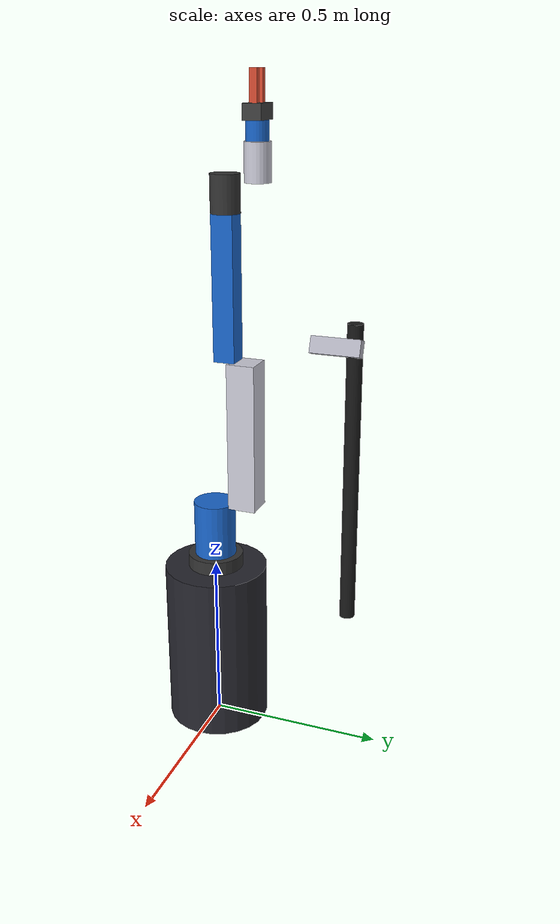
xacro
<?xml version="1.0"?>
<robot name="manipulation_robot" xmlns:xacro="http://www.ros.org/wiki/xacro">

  <!-- Include sub-macros -->
  <xacro:include filename="$(find manipulation_grasping)/urdf/arm_6dof.urdf.xacro"/>
  <xacro:include filename="$(find manipulation_grasping)/urdf/gripper.urdf.xacro"/>
  <xacro:include filename="$(find manipulation_grasping)/urdf/camera_mount.urdf.xacro"/>

  <!-- World Frame -->
  <link name="world"/>

  <!-- Heavy Mounting Pedestal -->
  <link name="base_link">
    <visual>
      <geometry>
        <cylinder radius="0.15" length="0.5"/>
      </geometry>
      <origin xyz="0 0 0.25" rpy="0 0 0"/>
      <material name="pedestal_color">
        <color rgba="0.15 0.15 0.18 1.0"/>
      </material>
    </visual>
    <collision>
      <geometry>
        <cylinder radius="0.15" length="0.5"/>
      </geometry>
      <origin xyz="0 0 0.25" rpy="0 0 0"/>
    </collision>
    <inertial>
      <mass value="50.0"/>
      <origin xyz="0 0 0.25" rpy="0 0 0"/>
      <inertia ixx="1.5" ixy="0.0" ixz="0.0" iyy="1.5" iyz="0.0" izz="0.5"/>
    </inertial>
  </link>

  <joint name="world_to_base" type="fixed">
    <parent link="world"/>
    <child link="base_link"/>
    <origin xyz="0 0 0" rpy="0 0 0"/>
  </joint>

  <!-- Instantiate 6-DOF Arm -->
  <xacro:arm_6dof parent="base_link">
    <origin xyz="0 0 0.5" rpy="0 0 0"/>
  </xacro:arm_6dof>

  <!-- Instantiate Parallel Gripper attached to tool0 flange -->
  <xacro:parallel_gripper parent="tool0">
    <origin xyz="0 0 0" rpy="0 0 0"/>
  </xacro:parallel_gripper>

  <!-- Instantiate Overhead Camera Stand positioned at base -->
  <xacro:overhead_camera parent="base_link">
    <origin xyz="0.15 0.45 0.5" rpy="0 0 0"/>
  </xacro:overhead_camera>

  <!-- Gazebo Harmonic Joint State & Trajectory Controller Plugins -->
  <gazebo>
    <plugin
      filename="gz-sim-joint-state-publisher-system"
      name="gz::sim::systems::JointStatePublisher">
      <topic>/joint_states</topic>
    </plugin>
    <plugin
      filename="gz-sim-joint-trajectory-controller-system"
      name="gz::sim::systems::JointTrajectoryController">
      <topic>/joint_trajectory_controller/joint_trajectory</topic>
    </plugin>
  </gazebo>

</robot>

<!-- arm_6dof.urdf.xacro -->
<robot xmlns:xacro="http://www.ros.org/wiki/xacro">

  <xacro:macro name="arm_6dof" params="parent *origin">

    <!-- Base link -->
    <link name="arm_base_link">
      <visual>
        <geometry>
          <cylinder radius="0.08" length="0.08"/>
        </geometry>
        <material name="dark_gray">
          <color rgba="0.2 0.2 0.2 1.0"/>
        </material>
      </visual>
      <collision>
        <geometry>
          <cylinder radius="0.08" length="0.08"/>
        </geometry>
      </collision>
      <inertial>
        <mass value="4.0"/>
        <inertia ixx="0.01" ixy="0.0" ixz="0.0" iyy="0.01" iyz="0.0" izz="0.01"/>
      </inertial>
    </link>

    <joint name="arm_base_joint" type="fixed">
      <xacro:insert_block name="origin"/>
      <parent link="${parent}"/>
      <child link="arm_base_link"/>
    </joint>

    <!-- Joint 1: Shoulder Pan -->
    <link name="shoulder_link">
      <visual>
        <geometry>
          <cylinder radius="0.06" length="0.1625"/>
        </geometry>
        <origin xyz="0 0 0.08125" rpy="0 0 0"/>
        <material name="metallic_blue">
          <color rgba="0.1 0.4 0.8 1.0"/>
        </material>
      </visual>
      <collision>
        <geometry>
          <cylinder radius="0.06" length="0.1625"/>
        </geometry>
        <origin xyz="0 0 0.08125" rpy="0 0 0"/>
      </collision>
      <inertial>
        <mass value="3.7"/>
        <inertia ixx="0.01" ixy="0.0" ixz="0.0" iyy="0.01" iyz="0.0" izz="0.007"/>
      </inertial>
    </link>

    <joint name="shoulder_pan_joint" type="revolute">
      <parent link="arm_base_link"/>
      <child link="shoulder_link"/>
      <origin xyz="0 0 0.04" rpy="0 0 0"/>
      <axis xyz="0 0 1"/>
      <limit lower="-3.14159" upper="3.14159" effort="150.0" velocity="3.14"/>
      <dynamics damping="0.5" friction="0.1"/>
    </joint>

    <!-- Joint 2: Shoulder Lift -->
    <link name="upper_arm_link">
      <visual>
        <geometry>
          <box size="0.08 0.08 0.425"/>
        </geometry>
        <origin xyz="0 0 0.2125" rpy="0 0 0"/>
        <material name="light_gray">
          <color rgba="0.8 0.8 0.85 1.0"/>
        </material>
      </visual>
      <collision>
        <geometry>
          <box size="0.08 0.08 0.425"/>
        </geometry>
        <origin xyz="0 0 0.2125" rpy="0 0 0"/>
      </collision>
      <inertial>
        <mass value="8.3"/>
        <inertia ixx="0.13" ixy="0.0" ixz="0.0" iyy="0.13" iyz="0.0" izz="0.01"/>
      </inertial>
    </link>

    <joint name="shoulder_lift_joint" type="revolute">
      <parent link="shoulder_link"/>
      <child link="upper_arm_link"/>
      <origin xyz="0 0.1 0.1625" rpy="0 0 0"/>
      <axis xyz="0 1 0"/>
      <limit lower="-3.14159" upper="3.14159" effort="150.0" velocity="3.14"/>
      <dynamics damping="0.5" friction="0.1"/>
    </joint>

    <!-- Joint 3: Elbow -->
    <link name="forearm_link">
      <visual>
        <geometry>
          <box size="0.06 0.06 0.3922"/>
        </geometry>
        <origin xyz="0 0 0.1961" rpy="0 0 0"/>
        <material name="metallic_blue"/>
      </visual>
      <collision>
        <geometry>
          <box size="0.06 0.06 0.3922"/>
        </geometry>
        <origin xyz="0 0 0.1961" rpy="0 0 0"/>
      </collision>
      <inertial>
        <mass value="2.3"/>
        <inertia ixx="0.03" ixy="0.0" ixz="0.0" iyy="0.03" iyz="0.0" izz="0.003"/>
      </inertial>
    </link>

    <joint name="elbow_joint" type="revolute">
      <parent link="upper_arm_link"/>
      <child link="forearm_link"/>
      <origin xyz="0 -0.05 0.425" rpy="0 0 0"/>
      <axis xyz="0 1 0"/>
      <limit lower="-3.14159" upper="3.14159" effort="150.0" velocity="3.14"/>
      <dynamics damping="0.4" friction="0.1"/>
    </joint>

    <!-- Joint 4: Wrist 1 -->
    <link name="wrist_1_link">
      <visual>
        <geometry>
          <cylinder radius="0.04" length="0.1"/>
        </geometry>
        <origin xyz="0 0 0.05" rpy="0 0 0"/>
        <material name="dark_gray"/>
      </visual>
      <collision>
        <geometry>
          <cylinder radius="0.04" length="0.1"/>
        </geometry>
        <origin xyz="0 0 0.05" rpy="0 0 0"/>
      </collision>
      <inertial>
        <mass value="1.2"/>
        <inertia ixx="0.002" ixy="0.0" ixz="0.0" iyy="0.002" iyz="0.0" izz="0.001"/>
      </inertial>
    </link>

    <joint name="wrist_1_joint" type="revolute">
      <parent link="forearm_link"/>
      <child link="wrist_1_link"/>
      <origin xyz="0 0 0.3922" rpy="0 0 0"/>
      <axis xyz="0 1 0"/>
      <limit lower="-3.14159" upper="3.14159" effort="28.0" velocity="3.14"/>
      <dynamics damping="0.2" friction="0.05"/>
    </joint>

    <!-- Joint 5: Wrist 2 -->
    <link name="wrist_2_link">
      <visual>
        <geometry>
          <cylinder radius="0.035" length="0.0997"/>
        </geometry>
        <origin xyz="0 0 0.05" rpy="0 0 0"/>
        <material name="light_gray"/>
      </visual>
      <collision>
        <geometry>
          <cylinder radius="0.035" length="0.0997"/>
        </geometry>
        <origin xyz="0 0 0.05" rpy="0 0 0"/>
      </collision>
      <inertial>
        <mass value="1.0"/>
        <inertia ixx="0.0015" ixy="0.0" ixz="0.0" iyy="0.0015" iyz="0.0" izz="0.001"/>
      </inertial>
    </link>

    <joint name="wrist_2_joint" type="revolute">
      <parent link="wrist_1_link"/>
      <child link="wrist_2_link"/>
      <origin xyz="0 0.09 0.08" rpy="0 0 0"/>
      <axis xyz="0 0 1"/>
      <limit lower="-3.14159" upper="3.14159" effort="28.0" velocity="3.14"/>
      <dynamics damping="0.2" friction="0.05"/>
    </joint>

    <!-- Joint 6: Wrist 3 -->
    <link name="wrist_3_link">
      <visual>
        <geometry>
          <cylinder radius="0.03" length="0.05"/>
        </geometry>
        <origin xyz="0 0 0.025" rpy="0 0 0"/>
        <material name="metallic_blue"/>
      </visual>
      <collision>
        <geometry>
          <cylinder radius="0.03" length="0.05"/>
        </geometry>
        <origin xyz="0 0 0.025" rpy="0 0 0"/>
      </collision>
      <inertial>
        <mass value="0.5"/>
        <inertia ixx="0.0005" ixy="0.0" ixz="0.0" iyy="0.0005" iyz="0.0" izz="0.0003"/>
      </inertial>
    </link>

    <joint name="wrist_3_joint" type="revolute">
      <parent link="wrist_2_link"/>
      <child link="wrist_3_link"/>
      <origin xyz="0 0 0.0997" rpy="0 0 0"/>
      <axis xyz="0 1 0"/>
      <limit lower="-3.14159" upper="3.14159" effort="28.0" velocity="3.14"/>
      <dynamics damping="0.1" friction="0.05"/>
    </joint>

    <!-- Tool Flange Link -->
    <link name="tool0"/>
    <joint name="flange_joint" type="fixed">
      <parent link="wrist_3_link"/>
      <child link="tool0"/>
      <origin xyz="0 0 0.05" rpy="0 0 0"/>
    </joint>

  </xacro:macro>

</robot>

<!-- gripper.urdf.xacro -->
<robot xmlns:xacro="http://www.ros.org/wiki/xacro">

  <xacro:macro name="parallel_gripper" params="parent *origin">

    <link name="gripper_base">
      <visual>
        <geometry>
          <box size="0.08 0.05 0.04"/>
        </geometry>
        <origin xyz="0 0 0.02" rpy="0 0 0"/>
        <material name="dark_gray">
          <color rgba="0.25 0.25 0.25 1.0"/>
        </material>
      </visual>
      <collision>
        <geometry>
          <box size="0.08 0.05 0.04"/>
        </geometry>
        <origin xyz="0 0 0.02" rpy="0 0 0"/>
      </collision>
      <inertial>
        <mass value="0.6"/>
        <inertia ixx="0.0003" ixy="0.0" ixz="0.0" iyy="0.0004" iyz="0.0" izz="0.0005"/>
      </inertial>
    </link>

    <joint name="gripper_base_joint" type="fixed">
      <xacro:insert_block name="origin"/>
      <parent link="${parent}"/>
      <child link="gripper_base"/>
    </joint>

    <!-- Left Finger (Prismatic) -->
    <link name="gripper_left_finger">
      <visual>
        <geometry>
          <box size="0.015 0.02 0.08"/>
        </geometry>
        <origin xyz="0 0 0.04" rpy="0 0 0"/>
        <material name="finger_material">
          <color rgba="0.85 0.3 0.2 1.0"/>
        </material>
      </visual>
      <collision>
        <geometry>
          <box size="0.015 0.02 0.08"/>
        </geometry>
        <origin xyz="0 0 0.04" rpy="0 0 0"/>
      </collision>
      <inertial>
        <mass value="0.1"/>
        <inertia ixx="0.00005" ixy="0.0" ixz="0.0" iyy="0.00005" iyz="0.0" izz="0.00001"/>
      </inertial>
    </link>

    <joint name="gripper_left_finger_joint" type="prismatic">
      <parent link="gripper_base"/>
      <child link="gripper_left_finger"/>
      <origin xyz="0.02 0 0.04" rpy="0 0 0"/>
      <axis xyz="1 0 0"/>
      <limit lower="0.0" upper="0.0425" effort="60.0" velocity="0.1"/>
      <dynamics damping="0.1" friction="0.05"/>
    </joint>

    <!-- Right Finger (Prismatic) -->
    <link name="gripper_right_finger">
      <visual>
        <geometry>
          <box size="0.015 0.02 0.08"/>
        </geometry>
        <origin xyz="0 0 0.04" rpy="0 0 0"/>
        <material name="finger_material"/>
      </visual>
      <collision>
        <geometry>
          <box size="0.015 0.02 0.08"/>
        </geometry>
        <origin xyz="0 0 0.04" rpy="0 0 0"/>
      </collision>
      <inertial>
        <mass value="0.1"/>
        <inertia ixx="0.00005" ixy="0.0" ixz="0.0" iyy="0.00005" iyz="0.0" izz="0.00001"/>
      </inertial>
    </link>

    <joint name="gripper_right_finger_joint" type="prismatic">
      <parent link="gripper_base"/>
      <child link="gripper_right_finger"/>
      <origin xyz="-0.02 0 0.04" rpy="0 0 0"/>
      <axis xyz="-1 0 0"/>
      <limit lower="0.0" upper="0.0425" effort="60.0" velocity="0.1"/>
      <dynamics damping="0.1" friction="0.05"/>
    </joint>

    <!-- Tool Center Point (TCP): Center of fingers at tips -->
    <link name="tcp"/>
    <joint name="tcp_joint" type="fixed">
      <parent link="gripper_base"/>
      <child link="tcp"/>
      <origin xyz="0 0 0.09" rpy="0 0 0"/>
    </joint>

  </xacro:macro>

</robot>

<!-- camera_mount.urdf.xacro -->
<robot xmlns:xacro="http://www.ros.org/wiki/xacro">

  <xacro:macro name="overhead_camera" params="parent *origin">

    <link name="camera_stand">
      <visual>
        <geometry>
          <cylinder radius="0.02" length="0.8"/>
        </geometry>
        <origin xyz="0 0 0.4" rpy="0 0 0"/>
        <material name="black">
          <color rgba="0.1 0.1 0.1 1.0"/>
        </material>
      </visual>
      <collision>
        <geometry>
          <cylinder radius="0.02" length="0.8"/>
        </geometry>
        <origin xyz="0 0 0.4" rpy="0 0 0"/>
      </collision>
      <inertial>
        <mass value="2.0"/>
        <inertia ixx="0.05" ixy="0.0" ixz="0.0" iyy="0.05" iyz="0.0" izz="0.001"/>
      </inertial>
    </link>

    <joint name="camera_stand_joint" type="fixed">
      <xacro:insert_block name="origin"/>
      <parent link="${parent}"/>
      <child link="camera_stand"/>
    </joint>

    <link name="camera_link">
      <visual>
        <geometry>
          <box size="0.04 0.12 0.03"/>
        </geometry>
        <origin xyz="0 0 0" rpy="0 0 0"/>
        <material name="camera_silver">
          <color rgba="0.7 0.7 0.75 1.0"/>
        </material>
      </visual>
      <collision>
        <geometry>
          <box size="0.04 0.12 0.03"/>
        </geometry>
      </collision>
      <inertial>
        <mass value="0.2"/>
        <inertia ixx="0.0001" ixy="0.0" ixz="0.0" iyy="0.0001" iyz="0.0" izz="0.0001"/>
      </inertial>
    </link>

    <!-- Tilted 70 degrees down facing manipulation table -->
    <joint name="camera_joint" type="fixed">
      <parent link="camera_stand"/>
      <child link="camera_link"/>
      <origin xyz="0.15 0 0.78" rpy="0 1.22 0"/>
    </joint>

    <link name="camera_optical_frame"/>
    <joint name="camera_optical_joint" type="fixed">
      <parent link="camera_link"/>
      <child link="camera_optical_frame"/>
      <origin xyz="0 0 0" rpy="-1.5708 0 -1.5708"/>
    </joint>

    <!-- Gazebo RGB-D Camera Sensor Plugin -->
    <gazebo reference="camera_link">
      <sensor name="rgbd_camera" type="rgbd_camera">
        <camera>
          <horizontal_fov>1.25</horizontal_fov>
          <image>
            <width>640</width>
            <height>480</height>
            <format>R8G8B8</format>
          </image>
          <clip>
            <near>0.1</near>
            <far>3.0</far>
          </clip>
          <depth_camera>
            <clip>
              <near>0.1</near>
              <far>3.0</far>
            </clip>
          </depth_camera>
        </camera>
        <always_on>true</always_on>
        <update_rate>30</update_rate>
        <visualize>true</visualize>
        <topic>/camera/points</topic>
        <gz_frame_id>camera_optical_frame</gz_frame_id>
      </sensor>
    </gazebo>

  </xacro:macro>

</robot>
